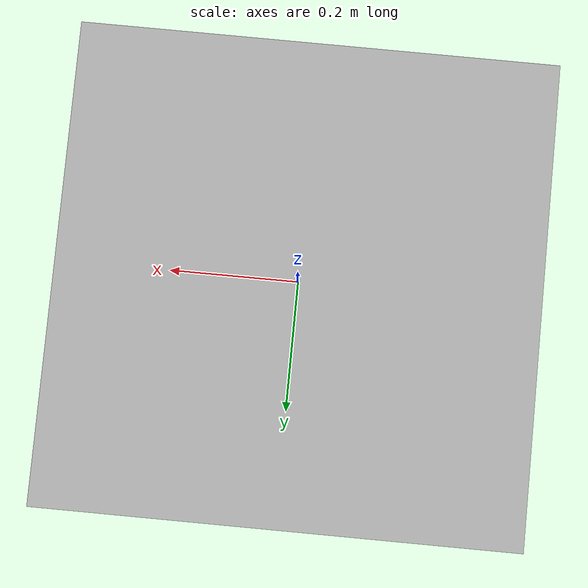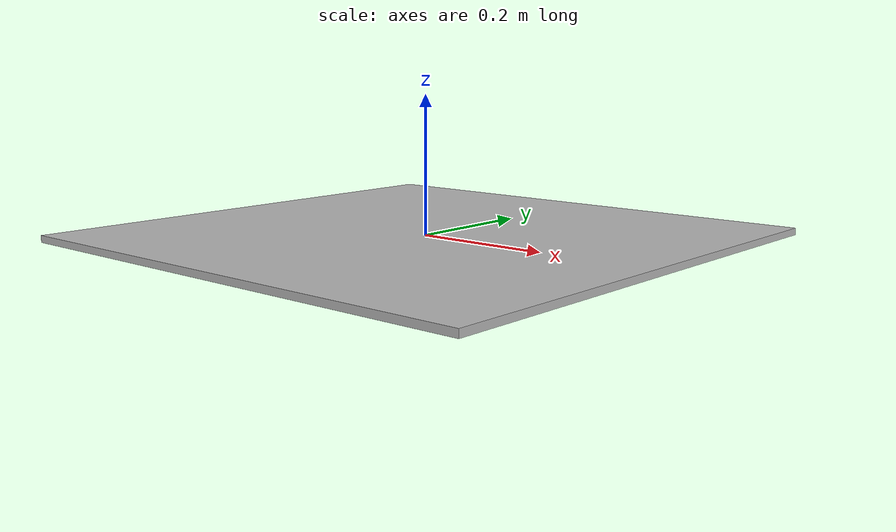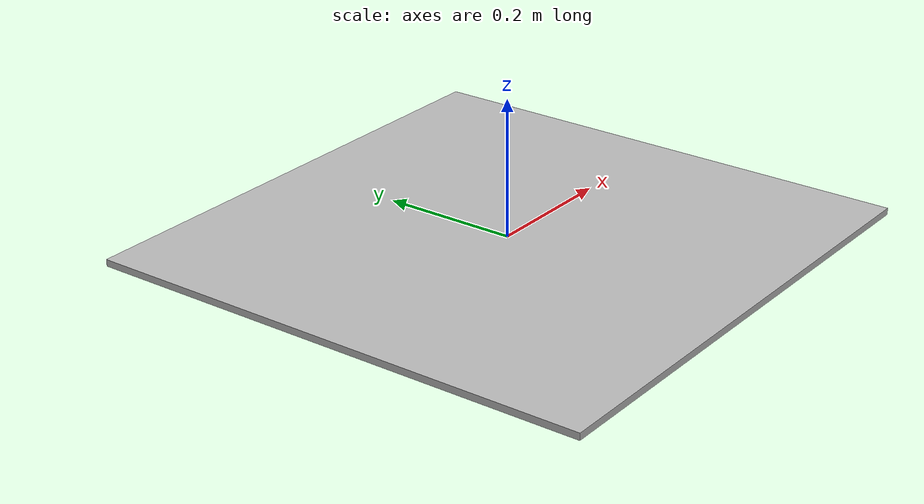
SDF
<?xml version='1.0'?>
<sdf version='1.5'>
  <model name='apriltag'>
    <link name='link'>
    <pose frame=''>0 0 0 0 0 0</pose>
      <visual name='visual'>
        <geometry>
          <box>
          <size>0.76 0.76 0.01</size>
          </box>
        </geometry>
           <material>
          <script>
            <uri>model://apriltag/materials/scripts</uri>
            <uri>model://apriltag/materials/textures</uri>
            <name>apriltag</name>
          </script>
        </material>
      </visual>
      <collision name="collision">
        <geometry>
          <box>
            <size>0.76 0.76 0.01</size>
          </box>
        </geometry>
        <friction>
          <ode>
            <mu>100</mu>
            <mu2>50</mu2>
          </ode>
        </friction>
      </collision>
     </link>
  </model>
</sdf>
